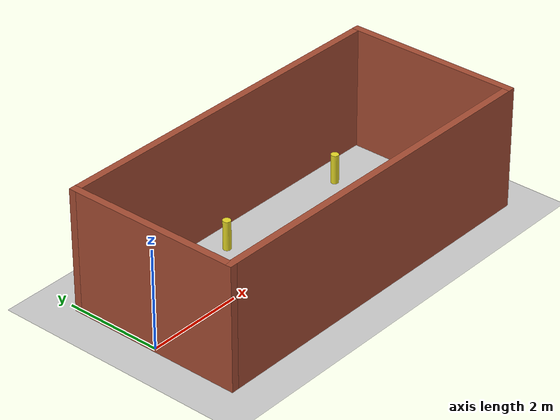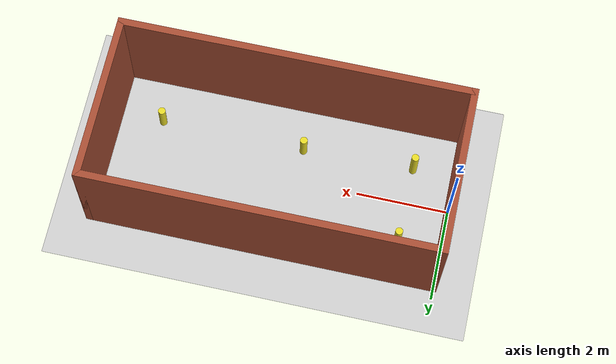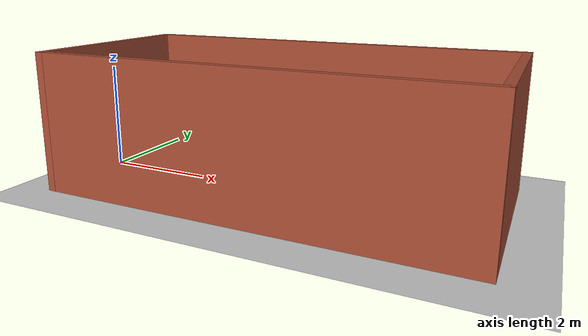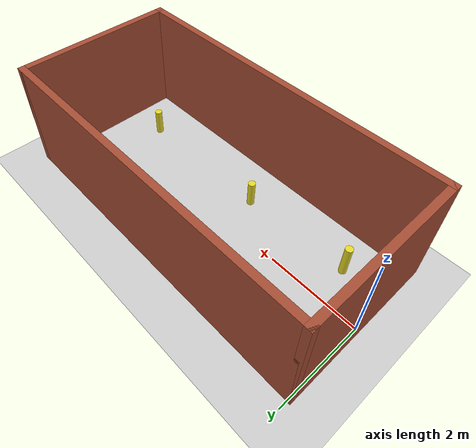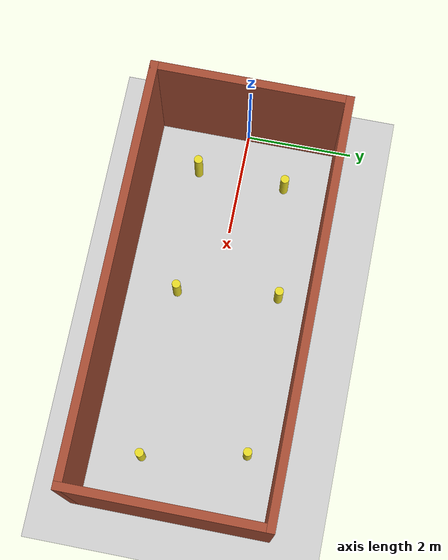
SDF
<sdf version="1.7">
 <world name="default">
  <light name="sun" type="directional">
   <pose>0 0 10 0 -0 0</pose>
   <diffuse>0.8 0.8 0.8 1</diffuse>
   <specular>0.2 0.2 0.2 1</specular>
   <attenuation>
    <range>1000</range>
    <constant>0.9</constant>
    <linear>0.01</linear>
    <quadratic>0.001</quadratic>
   </attenuation>
   <direction>-0.5 0.1 -0.9</direction>
   <spot><inner_angle>0</inner_angle><outer_angle>0</outer_angle><falloff>0</falloff></spot>
  </light>
  <model name="ground_plane">
   <static>1</static>
   <link name="link">
    <collision name="collision">
     <geometry><plane><normal>0 0 1</normal><size>100 100</size></plane></geometry>
     <surface>
      <contact><collide_bitmask>65535</collide_bitmask></contact>
      <friction><ode><mu>100</mu><mu2>50</mu2></ode></friction>
     </surface>
    </collision>
    <visual name="visual">
     <cast_shadows>0</cast_shadows>
     <geometry><plane><normal>0 0 1</normal><size>100 100</size></plane></geometry>
     <material>
      <script><uri>file://media/materials/scripts/gazebo.material</uri><name>Gazebo/Grey</name></script>
     </material>
    </visual>
   </link>
  </model>
  <gravity>0 0 -9.8</gravity>
  <magnetic_field>6e-06 2.3e-05 -4.2e-05</magnetic_field>
  <atmosphere type="adiabatic"/>
  <physics type="ode">
   <max_step_size>0.001</max_step_size>
   <real_time_factor>1</real_time_factor>
   <real_time_update_rate>1000</real_time_update_rate>
  </physics>
  <scene><ambient>0.4 0.4 0.4 1</ambient><background>0.7 0.7 0.7 1</background><shadows>1</shadows></scene>
  <spherical_coordinates>
   <surface_model>EARTH_WGS84</surface_model>
   <latitude_deg>0</latitude_deg>
   <longitude_deg>0</longitude_deg>
   <elevation>0</elevation>
   <heading_deg>0</heading_deg>
  </spherical_coordinates>
  <model name="lane_dividers">
   <pose>0.295588 0.178393 -0.15 0 -0 0</pose>
   <static>1</static>
   <link name="pole_1">
    <collision name="collision">
     <geometry><cylinder><radius>0.08</radius><length>0.75</length></cylinder></geometry>
    </collision>
    <visual name="visual">
     <geometry><cylinder><radius>0.08</radius><length>0.75</length></cylinder></geometry>
     <material>
      <script><uri>file://media/materials/scripts/gazebo.material</uri><name>Gazebo/Yellow</name></script>
     </material>
    </visual>
    <pose>0.61696 -0.9867 0.5 0 -0 0</pose>
   </link>
   <link name="pole_2">
    <collision name="collision">
     <geometry><cylinder><radius>0.08</radius><length>0.75</length></cylinder></geometry>
    </collision>
    <visual name="visual">
     <geometry><cylinder><radius>0.08</radius><length>0.75</length></cylinder></geometry>
     <material>
      <script><uri>file://media/materials/scripts/gazebo.material</uri><name>Gazebo/Yellow</name></script>
     </material>
    </visual>
    <pose>3.0455 -0.9152 0.375 0 -0 0</pose>
   </link>
   <link name="pole_3">
    <collision name="collision">
     <geometry><cylinder><radius>0.08</radius><length>0.75</length></cylinder></geometry>
    </collision>
    <visual name="visual">
     <geometry><cylinder><radius>0.08</radius><length>0.75</length></cylinder></geometry>
     <material>
      <script><uri>file://media/materials/scripts/gazebo.material</uri><name>Gazebo/Yellow</name></script>
     </material>
    </visual>
    <pose>5.8324 0.9625 0.375 0 -0 0</pose>
   </link>
   <link name="pole_4">
    <collision name="collision">
     <geometry><cylinder><radius>0.08</radius><length>0.75</length></cylinder></geometry>
    </collision>
    <visual name="visual">
     <geometry><cylinder><radius>0.08</radius><length>0.75</length></cylinder></geometry>
     <material>
      <script><uri>file://media/materials/scripts/gazebo.material</uri><name>Gazebo/Yellow</name></script>
     </material>
    </visual>
    <pose>2.8167 0.9742 0.375 0 -0 0</pose>
   </link>
   <link name="pole_5">
    <collision name="collision">
     <geometry><cylinder><radius>0.08</radius><length>0.75</length></cylinder></geometry>
    </collision>
    <visual name="visual">
     <geometry><cylinder><radius>0.08</radius><length>0.75</length></cylinder></geometry>
     <material>
      <script><uri>file://media/materials/scripts/gazebo.material</uri><name>Gazebo/Yellow</name></script>
     </material>
    </visual>
    <pose>0.6447 0.6813 0.375 0 -0 0</pose>
   </link>
   <link name="pole_6">
    <collision name="collision">
     <geometry><cylinder><radius>0.08</radius><length>0.75</length></cylinder></geometry>
    </collision>
    <visual name="visual">
     <geometry><cylinder><radius>0.08</radius><length>0.75</length></cylinder></geometry>
     <material>
      <script><uri>file://media/materials/scripts/gazebo.material</uri><name>Gazebo/Yellow</name></script>
     </material>
    </visual>
    <pose>6.2146 -0.9269 0.375 0 -0 0</pose>
   </link>
  </model>
  <model name="labset">
   <pose>3.75 -0 0 0 -0 0</pose>
   <link name="Wall_22">
    <collision name="Wall_22_Collision">
     <geometry><box><size>3.65 0.15 2.5</size></box></geometry>
     <pose>0 0 1.25 0 -0 0</pose>
    </collision>
    <visual name="Wall_22_Visual">
     <pose>0 0 1.25 0 -0 0</pose>
     <geometry><box><size>3.65 0.15 2.5</size></box></geometry>
     <material>
      <script><uri>file://media/materials/scripts/gazebo.material</uri><name>Gazebo/Bricks</name></script>
      <ambient>1 1 1 1</ambient>
     </material>
     <meta><layer>0</layer></meta>
    </visual>
    <pose>-3.75 0 0 0 -0 -1.5708</pose>
   </link>
   <link name="Wall_24">
    <collision name="Wall_24_Collision">
     <geometry><box><size>7.65 0.15 2.5</size></box></geometry>
     <pose>0 0 1.25 0 -0 0</pose>
    </collision>
    <visual name="Wall_24_Visual">
     <pose>0 0 1.25 0 -0 0</pose>
     <geometry><box><size>7.65 0.15 2.5</size></box></geometry>
     <material>
      <script><uri>file://media/materials/scripts/gazebo.material</uri><name>Gazebo/Bricks</name></script>
      <ambient>1 1 1 1</ambient>
     </material>
     <meta><layer>0</layer></meta>
    </visual>
    <pose>-0 1.75 0 0 -0 0</pose>
   </link>
   <link name="Wall_26">
    <collision name="Wall_26_Collision">
     <geometry><box><size>7.65 0.15 2.5</size></box></geometry>
     <pose>0 0 1.25 0 -0 0</pose>
    </collision>
    <visual name="Wall_26_Visual">
     <pose>0 0 1.25 0 -0 0</pose>
     <geometry><box><size>7.65 0.15 2.5</size></box></geometry>
     <material>
      <script><uri>file://media/materials/scripts/gazebo.material</uri><name>Gazebo/Bricks</name></script>
      <ambient>1 1 1 1</ambient>
     </material>
     <meta><layer>0</layer></meta>
    </visual>
    <pose>-0 -1.75 0 0 -0 3.14159</pose>
   </link>
   <link name="Wall_28">
    <collision name="Wall_28_Collision">
     <geometry><box><size>3.65 0.15 2.5</size></box></geometry>
     <pose>0 0 1.25 0 -0 0</pose>
    </collision>
    <visual name="Wall_28_Visual">
     <pose>0 0 1.25 0 -0 0</pose>
     <geometry><box><size>3.65 0.15 2.5</size></box></geometry>
     <material>
      <script><uri>file://media/materials/scripts/gazebo.material</uri><name>Gazebo/Bricks</name></script>
      <ambient>1 1 1 1</ambient>
     </material>
     <meta><layer>0</layer></meta>
    </visual>
    <pose>3.75 0 0 0 -0 -1.5708</pose>
   </link>
   <static>1</static>
  </model>
 </world>
</sdf>
